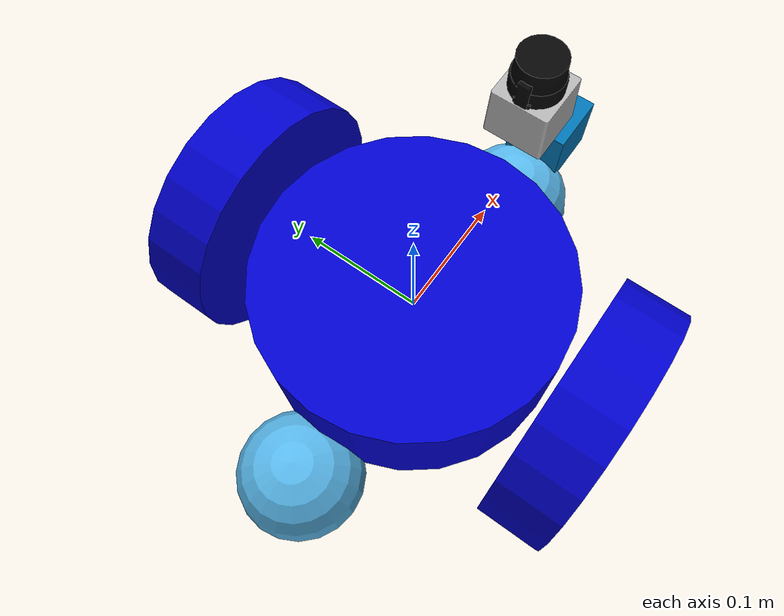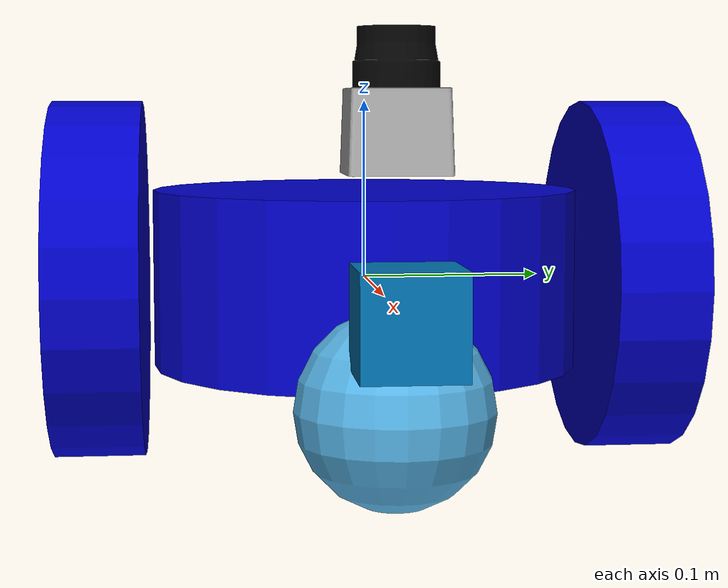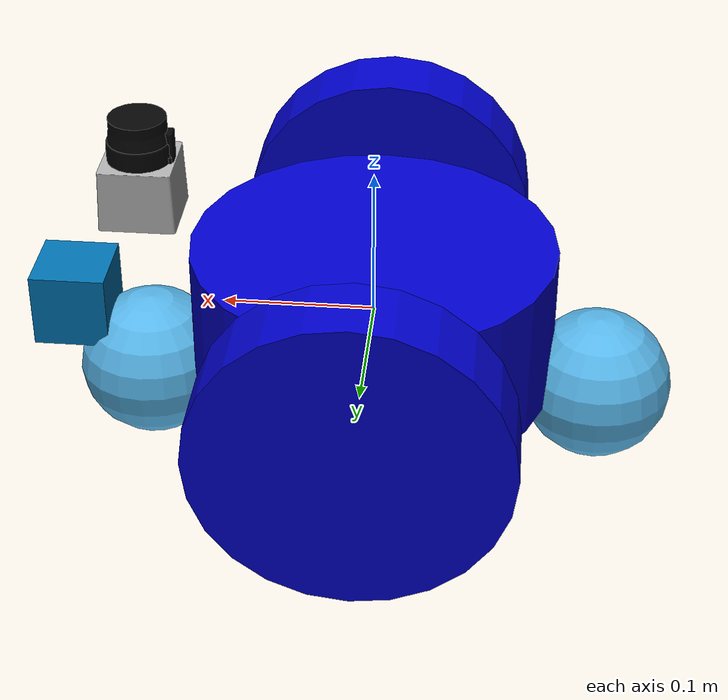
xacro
<?xml version='1.0'?>

<robot name="udacity_bot" xmlns:xacro="http://www.ros.org/wiki/xacro">

  <xacro:include filename="$(find udacity_bot)/urdf/udacity_bot.gazebo" />
  <link name="robot_footprint"></link>

  <material name="Blue">
	<color rgba="0.0 0.0 0.8 1.0"/>
  </material>

  <joint name="robot_footprint_joint" type="fixed">
    <origin xyz="0 0 0" rpy="0 0 0" />
    <parent link="robot_footprint"/>
    <child link="chassis" />
  </joint>

  <link name='chassis'>
    <pose>0 0 0.1 0 0 0</pose>

    <inertial>
      <mass value="15.0"/>
      <origin xyz="0.0 0 0" rpy=" 0 0 0"/>
      <inertia
          ixx="0.1" ixy="0" ixz="0"
          iyy="0.1" iyz="0"
          izz="0.1"
      />
    </inertial>

    <collision name='collision'>
      <origin xyz="0 0 0" rpy=" 0 0 0"/>
      <geometry>
        <box size=".4 .2 .1"/>
      </geometry>
    </collision>

    <visual name='chassis_visual'>
      <origin xyz="0 0 0" rpy=" 0 0 0"/>
      <geometry>
        <cylinder radius=".12" length=".1"/>
      </geometry>
      <material name='Blue'/>
    </visual>

    <collision name='back_caster_collision'>
      <origin xyz="-0.15 0 -0.05" rpy=" 0 0 0"/>
      <geometry>
        <sphere radius="0.0499"/>
      </geometry>
    </collision>

    <visual name='back_caster_visual'>
      <origin xyz="-0.15 0 -0.05" rpy=" 0 0 0"/>
      <geometry>
        <sphere radius="0.05"/>
      </geometry>
    </visual>

    <collision name='front_caster_collision'>
      <origin xyz="0.15 0 -0.05" rpy=" 0 0 0"/>
      <geometry>
        <sphere radius="0.0499"/>
      </geometry>
    </collision>

    <visual name='front_caster_visual'>
      <origin xyz="0.15 0 -0.05" rpy=" 0 0 0"/>
      <geometry>
        <sphere radius="0.05"/>
      </geometry>
    </visual>

  </link>
 <link name='left_wheel'>
        <inertial>
            <mass value="5.0"/>
            <origin xyz="0.0 0 0" rpy=" 0 1.5707 1.5707"/>
            <inertia ixx="0.1" ixy="0" ixz="0" iyy="0.1" iyz="0" izz="0.1"/>
        </inertial>

        <collision name='collision'>
            <origin xyz="0.0 0 0" rpy=" 0 1.5707 1.5707"/>
            <geometry>
                <cylinder length="0.05" radius="0.1"/>
            </geometry>
        </collision>

        <visual name='wheel_visual'>
            <origin xyz="0.0 0 0" rpy=" 0 1.5707 1.5707"/>
            <geometry>
                <cylinder length="0.05" radius="0.1"/>
            </geometry>
            <material name='Blue'/>
        </visual>
 </link>
<joint type="continuous" name="left_wheel_hinge">
        <origin xyz="0 0.15 0" rpy="0 0 0"/>
        <child link="left_wheel"/>
        <parent link="chassis"/>
        <axis xyz="0 1 0" rpy="0 0 0"/>
        <limit effort="10000" velocity="1000"/>
        <joint_properties damping="1.0" friction="1.0"/>
</joint>
<link name='right_wheel'>
        <inertial>
            <mass value="5.0"/>
            <origin xyz="0.0 0 0" rpy=" 0 1.5707 1.5707"/>
            <inertia ixx="0.1" ixy="0" ixz="0" iyy="0.1" iyz="0" izz="0.1"/>
        </inertial>

        <collision name='collision'>
            <origin xyz="0.0 0 0" rpy=" 0 1.5707 1.5707"/>
            <geometry>
                <cylinder length="0.05" radius="0.1"/>
            </geometry>
        </collision>

        <visual name='wheel_visual'>
            <origin xyz="0.0 0 0" rpy=" 0 1.5707 1.5707"/>
            <geometry>
                <cylinder length="0.05" radius="0.1"/>
            </geometry>
            <material name='Blue'/>
        </visual>
</link>
<joint type="continuous" name="right_wheel_hinge">
        <origin xyz="0 -0.15 0" rpy="0 0 0"/>
        <child link="right_wheel"/>
        <parent link="chassis"/>
        <axis xyz="0 1 0" rpy="0 0 0"/>
        <limit effort="10000" velocity="1000"/>
        <joint_properties damping="1.0" friction="1.0"/>
</joint>
<link name='camera'>
        <inertial>
            <mass value="0.1"/>
            <origin xyz="0.0 0 0" rpy=" 0 0 0"/>
            <inertia ixx="1e-6" ixy="0" ixz="0" iyy="1e-6" iyz="0" izz="1e-6"/>
        </inertial>

        <collision name='collision'>
            <origin xyz="0.0 0 0" rpy=" 0 0 0"/>
            <geometry>
                <box size="0.05 0.05 0.05"/>
            </geometry>
        </collision>

        <visual name='camera_visual'>
            <origin xyz="0.0 0 0" rpy=" 0 0 0"/>
            <geometry>
                <box size="0.05 0.05 0.05"/>
            </geometry>
        </visual>
</link>
<joint type="fixed" name="camera_joint">
        <origin xyz="0.2 0 0" rpy="0 0 0"/>
        <child link="camera"/>
        <parent link="chassis"/>
</joint>
<link name='hokuyo'>
        <inertial>
            <mass value="0.1"/>
            <origin xyz="0.0 0 0" rpy=" 0 0 0"/>
            <inertia ixx="1e-6" ixy="0" ixz="0" iyy="1e-6" iyz="0" izz="1e-6"/>
        </inertial>

        <collision name='collision'>
            <origin xyz="0.0 0 0" rpy=" 0 0 0"/>
            <geometry>
                <box size="0.1 0.1 0.1"/>
            </geometry>
        </collision>

        <visual name='hokuyo_visual'>
            <origin xyz="0.0 0 0" rpy=" 0 0 0"/>
            <geometry>
                <mesh filename="package://udacity_bot/meshes/hokuyo.dae"/>
            </geometry>
        </visual>
    </link>
    <joint type="fixed" name="hokuyo_joint">
        <origin xyz="0.15 0 0.1" rpy="0 0 0"/>
        <child link="hokuyo"/>
        <parent link="chassis"/>
</joint>
</robot>
